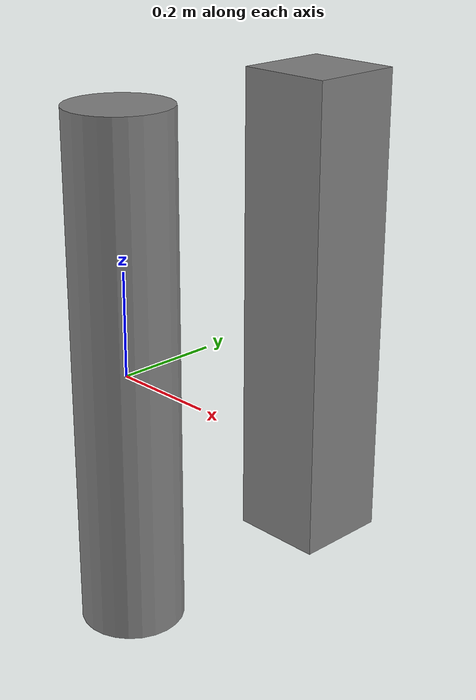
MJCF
<mujoco model="test_robot">
    <compiler angle="radian"/>
    <worldbody>
        <body name="link1" pos="0 0 0">
            <joint name="joint1" type="hinge" axis="0 0 1"/>
            <geom type="cylinder" size="0.1 0.5"/>
            <body name="link2" pos="0 0.5 0">
                <joint name="joint2" type="hinge" axis="0 1 0"/>
                <geom type="box" size="0.1 0.1 0.5"/>
            </body>
        </body>
    </worldbody>
</mujoco>
